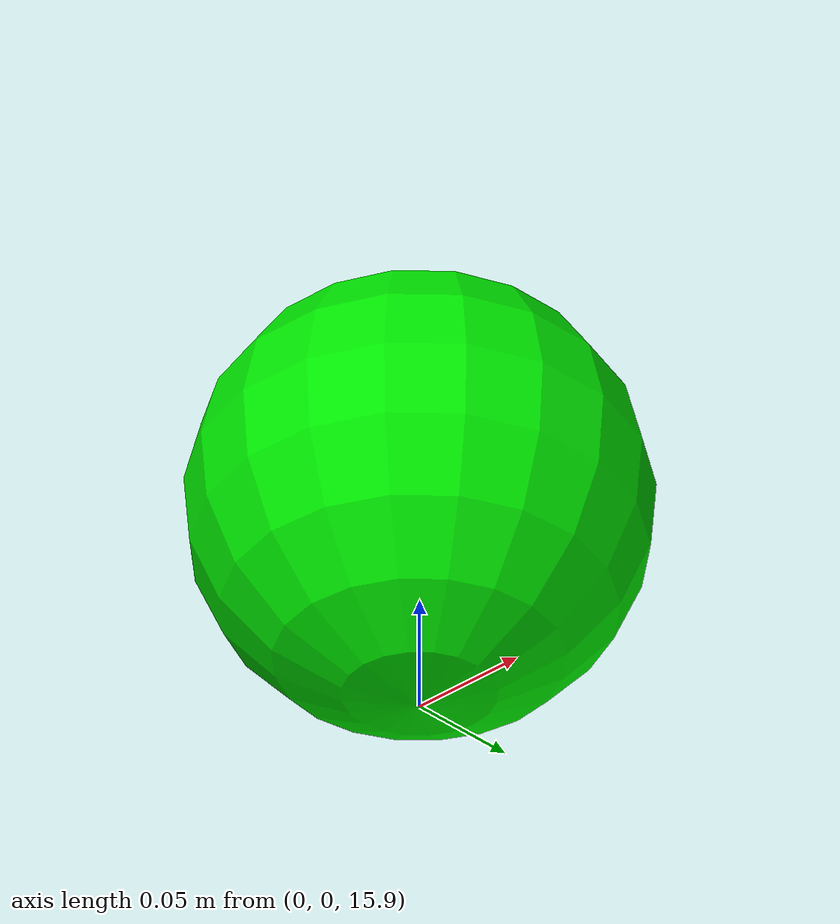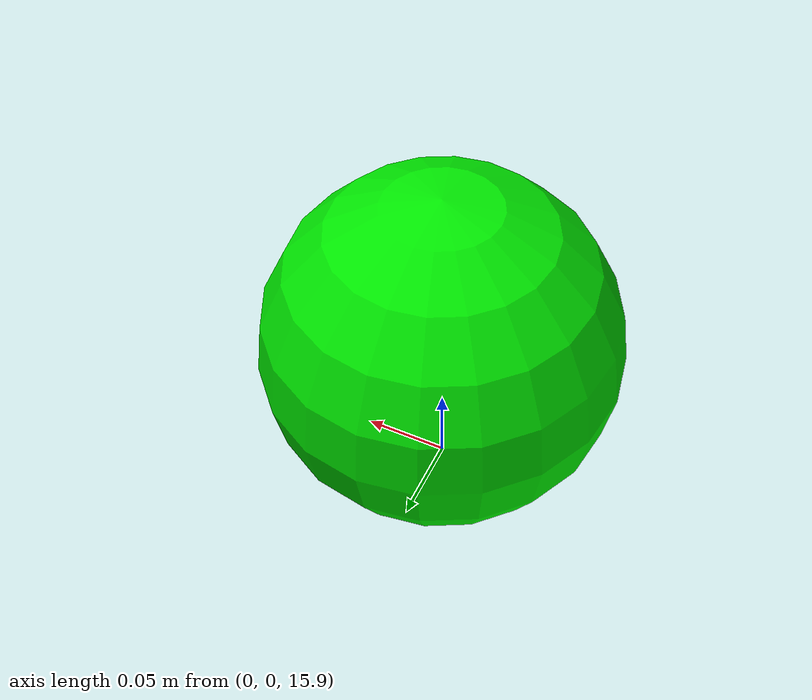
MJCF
<mujoco model="bowling_simulation">
  <compiler angle="radian" />
  <option timestep="0.001" integrator="RK4">
    <flag contact="disable" energy="enable" />
  </option>
  <size nkey="1" />
  <visual>
    <global azimuth="225" elevation="-30" />
  </visual>
  <worldbody>
    <body name="bowling" pos="0 0 16">
      <joint type="free" limited="false" actuatorfrclimited="false" />
      <geom size="0.1" mass="10" rgba="0 0.9 0 1" />
    </body>
  </worldbody>
  <keyframe>
    <key name="home" />
  </keyframe>
  <extension>
    <plugin plugin="mujoco.multiverse_connector">
      <instance name="mujoco_client">
        <config key="host" value="tcp://127.0.0.1" />
        <config key="server_port" value="7000" />
        <config key="client_port" value="7502" />
        <config key="world_name" value="world" />
        <config key="simulation_name" value="bowling_simulation" />
        <config key="send" value="{'bowling': ['relative_velocity', 'position', 'quaternion']}" />
        <config key="receive" value="{'bowling': ['force', 'torque']}" />
      </instance>
    </plugin>
  </extension>
</mujoco>
